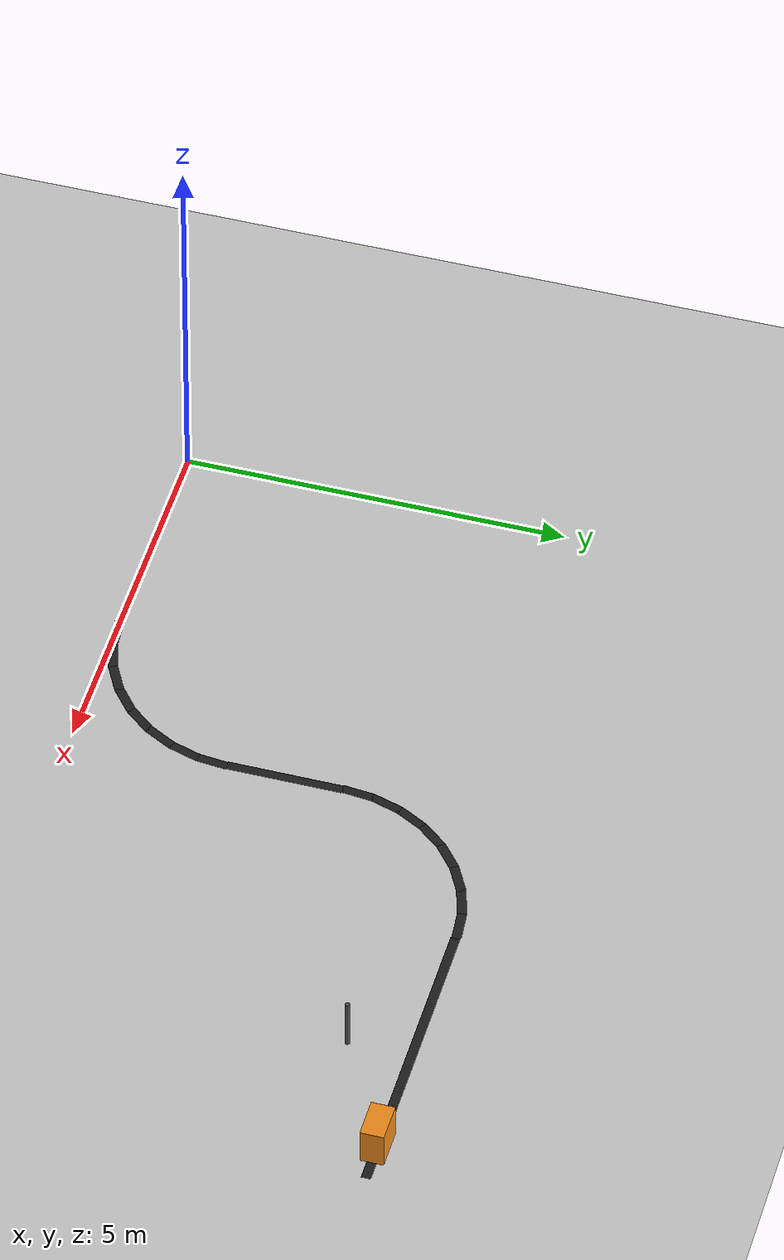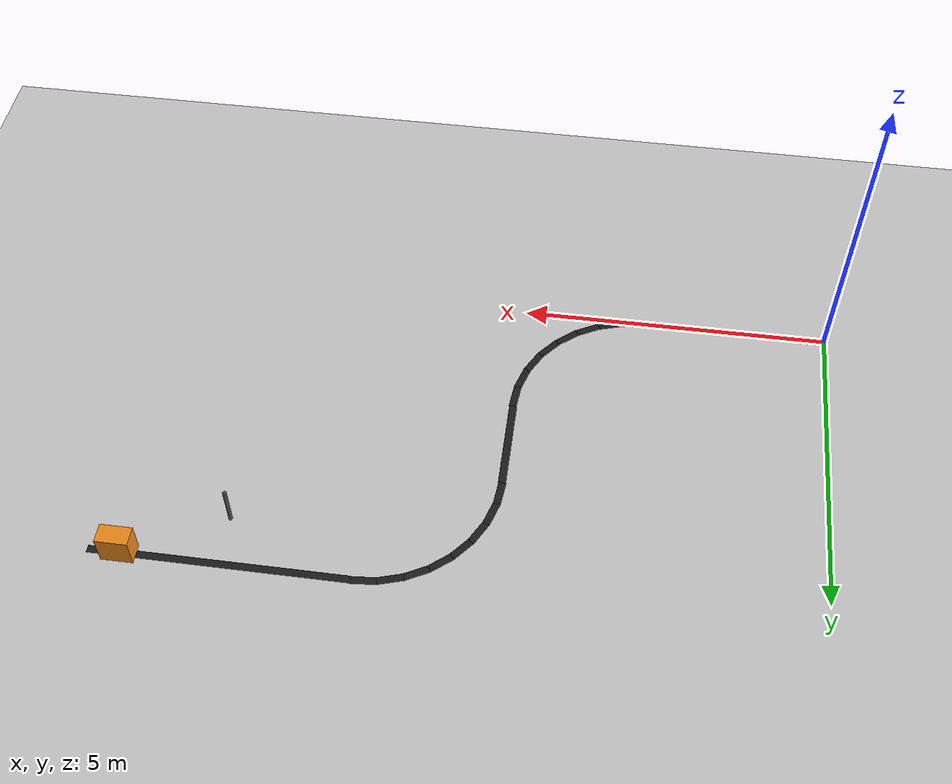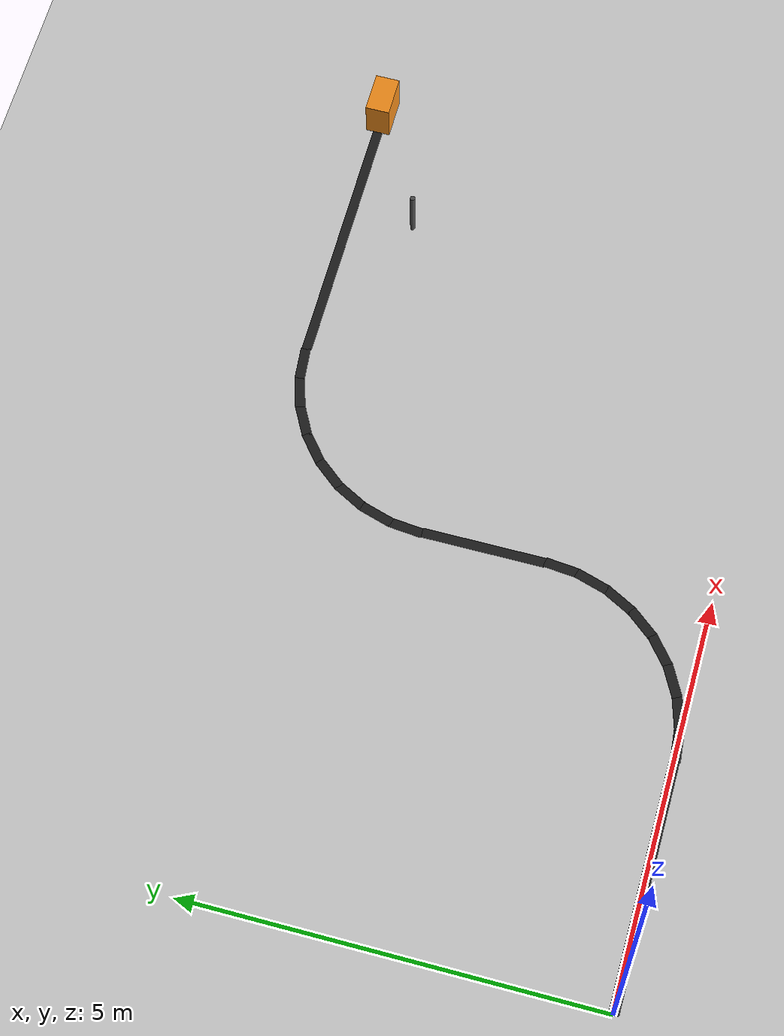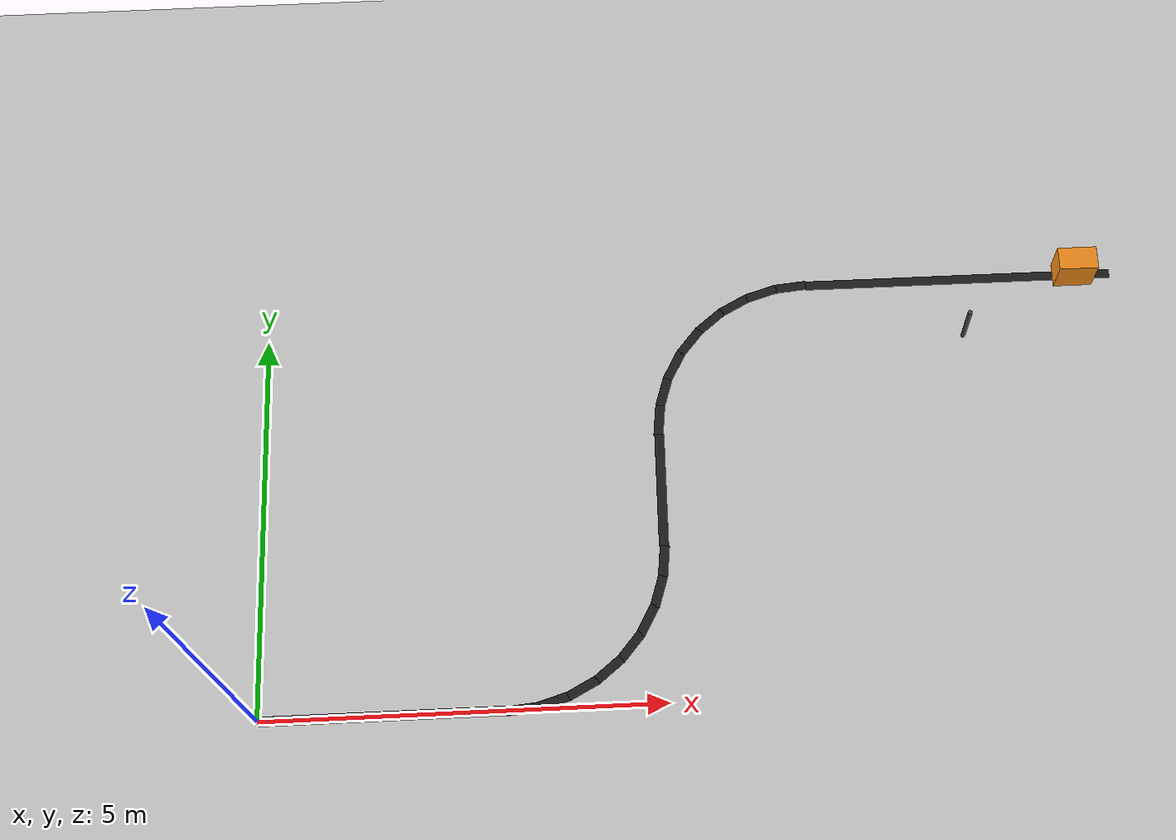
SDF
<sdf version="1.6">
 <world name="s_curve">
  <plugin name="gazebo_ros_state" filename="libgazebo_ros_state.so"/>
  <light type="directional" name="sun">
   <pose>0 0 10 0 0 0</pose>
   <diffuse>0.55 0.55 0.62 1</diffuse>
   <specular>0.08 0.08 0.08 1</specular>
   <attenuation>
    <range>1000</range>
    <constant>0.9</constant>
    <linear>0.01</linear>
    <quadratic>0.001</quadratic>
   </attenuation>
   <direction>-0.1 -0.3 -0.95</direction>
  </light>
  <model name="ground_plane">
   <static>true</static>
   <link name="link">
    <collision name="collision">
     <geometry><plane><normal>0 0 1</normal><size>100 100</size></plane></geometry>
     <surface><friction><ode><mu>100</mu><mu2>50</mu2></ode></friction></surface>
    </collision>
    <visual name="visual">
     <cast_shadows>false</cast_shadows>
     <geometry><plane><normal>0 0 1</normal><size>100 100</size></plane></geometry>
     <material>
      <script><uri>file://media/materials/scripts/gazebo.material</uri><name>Gazebo/Grey</name></script>
     </material>
    </visual>
   </link>
  </model>
  <model name="lane_0">
   <static>true</static>
   <link name="link">
    <visual name="visual">
     <geometry><box><size>3.0000 0.1200 0.001</size></box></geometry>
     <material>
      <script><uri>file://media/materials/scripts/gazebo.material</uri><name>Gazebo/Black</name></script>
     </material>
    </visual>
   </link>
   <pose>1.5000 0.0000 0.0005 0 0 0.0000</pose>
  </model>
  <model name="lane_1">
   <static>true</static>
   <link name="link">
    <visual name="visual">
     <geometry><box><size>0.4123 0.1200 0.001</size></box></geometry>
     <material>
      <script><uri>file://media/materials/scripts/gazebo.material</uri><name>Gazebo/Black</name></script>
     </material>
    </visual>
   </link>
   <pose>3.1960 0.0096 0.0005 0 0 0.0982</pose>
  </model>
  <model name="lane_2">
   <static>true</static>
   <link name="link">
    <visual name="visual">
     <geometry><box><size>0.4123 0.1200 0.001</size></box></geometry>
     <material>
      <script><uri>file://media/materials/scripts/gazebo.material</uri><name>Gazebo/Black</name></script>
     </material>
    </visual>
   </link>
   <pose>3.5806 0.0861 0.0005 0 0 0.2945</pose>
  </model>
  <model name="lane_3">
   <static>true</static>
   <link name="link">
    <visual name="visual">
     <geometry><box><size>0.4123 0.1200 0.001</size></box></geometry>
     <material>
      <script><uri>file://media/materials/scripts/gazebo.material</uri><name>Gazebo/Black</name></script>
     </material>
    </visual>
   </link>
   <pose>3.9428 0.2362 0.0005 0 0 0.4909</pose>
  </model>
  <model name="lane_4">
   <static>true</static>
   <link name="link">
    <visual name="visual">
     <geometry><box><size>0.4123 0.1200 0.001</size></box></geometry>
     <material>
      <script><uri>file://media/materials/scripts/gazebo.material</uri><name>Gazebo/Black</name></script>
     </material>
    </visual>
   </link>
   <pose>4.2688 0.4540 0.0005 0 0 0.6872</pose>
  </model>
  <model name="lane_5">
   <static>true</static>
   <link name="link">
    <visual name="visual">
     <geometry><box><size>0.4123 0.1200 0.001</size></box></geometry>
     <material>
      <script><uri>file://media/materials/scripts/gazebo.material</uri><name>Gazebo/Black</name></script>
     </material>
    </visual>
   </link>
   <pose>4.5460 0.7312 0.0005 0 0 0.8836</pose>
  </model>
  <model name="lane_6">
   <static>true</static>
   <link name="link">
    <visual name="visual">
     <geometry><box><size>0.4123 0.1200 0.001</size></box></geometry>
     <material>
      <script><uri>file://media/materials/scripts/gazebo.material</uri><name>Gazebo/Black</name></script>
     </material>
    </visual>
   </link>
   <pose>4.7638 1.0572 0.0005 0 0 1.0799</pose>
  </model>
  <model name="lane_7">
   <static>true</static>
   <link name="link">
    <visual name="visual">
     <geometry><box><size>0.4123 0.1200 0.001</size></box></geometry>
     <material>
      <script><uri>file://media/materials/scripts/gazebo.material</uri><name>Gazebo/Black</name></script>
     </material>
    </visual>
   </link>
   <pose>4.9139 1.4194 0.0005 0 0 1.2763</pose>
  </model>
  <model name="lane_8">
   <static>true</static>
   <link name="link">
    <visual name="visual">
     <geometry><box><size>0.4123 0.1200 0.001</size></box></geometry>
     <material>
      <script><uri>file://media/materials/scripts/gazebo.material</uri><name>Gazebo/Black</name></script>
     </material>
    </visual>
   </link>
   <pose>4.9904 1.8040 0.0005 0 0 1.4726</pose>
  </model>
  <model name="lane_9">
   <static>true</static>
   <link name="link">
    <visual name="visual">
     <geometry><box><size>1.5000 0.1200 0.001</size></box></geometry>
     <material>
      <script><uri>file://media/materials/scripts/gazebo.material</uri><name>Gazebo/Black</name></script>
     </material>
    </visual>
   </link>
   <pose>5.0000 2.7500 0.0005 0 0 1.5708</pose>
  </model>
  <model name="lane_10">
   <static>true</static>
   <link name="link">
    <visual name="visual">
     <geometry><box><size>0.4123 0.1200 0.001</size></box></geometry>
     <material>
      <script><uri>file://media/materials/scripts/gazebo.material</uri><name>Gazebo/Black</name></script>
     </material>
    </visual>
   </link>
   <pose>5.0096 3.6960 0.0005 0 0 4.6142</pose>
  </model>
  <model name="lane_11">
   <static>true</static>
   <link name="link">
    <visual name="visual">
     <geometry><box><size>0.4123 0.1200 0.001</size></box></geometry>
     <material>
      <script><uri>file://media/materials/scripts/gazebo.material</uri><name>Gazebo/Black</name></script>
     </material>
    </visual>
   </link>
   <pose>5.0861 4.0806 0.0005 0 0 4.4179</pose>
  </model>
  <model name="lane_12">
   <static>true</static>
   <link name="link">
    <visual name="visual">
     <geometry><box><size>0.4123 0.1200 0.001</size></box></geometry>
     <material>
      <script><uri>file://media/materials/scripts/gazebo.material</uri><name>Gazebo/Black</name></script>
     </material>
    </visual>
   </link>
   <pose>5.2362 4.4428 0.0005 0 0 4.2215</pose>
  </model>
  <model name="lane_13">
   <static>true</static>
   <link name="link">
    <visual name="visual">
     <geometry><box><size>0.4123 0.1200 0.001</size></box></geometry>
     <material>
      <script><uri>file://media/materials/scripts/gazebo.material</uri><name>Gazebo/Black</name></script>
     </material>
    </visual>
   </link>
   <pose>5.4540 4.7688 0.0005 0 0 4.0252</pose>
  </model>
  <model name="lane_14">
   <static>true</static>
   <link name="link">
    <visual name="visual">
     <geometry><box><size>0.4123 0.1200 0.001</size></box></geometry>
     <material>
      <script><uri>file://media/materials/scripts/gazebo.material</uri><name>Gazebo/Black</name></script>
     </material>
    </visual>
   </link>
   <pose>5.7312 5.0460 0.0005 0 0 3.8288</pose>
  </model>
  <model name="lane_15">
   <static>true</static>
   <link name="link">
    <visual name="visual">
     <geometry><box><size>0.4123 0.1200 0.001</size></box></geometry>
     <material>
      <script><uri>file://media/materials/scripts/gazebo.material</uri><name>Gazebo/Black</name></script>
     </material>
    </visual>
   </link>
   <pose>6.0572 5.2638 0.0005 0 0 3.6325</pose>
  </model>
  <model name="lane_16">
   <static>true</static>
   <link name="link">
    <visual name="visual">
     <geometry><box><size>0.4123 0.1200 0.001</size></box></geometry>
     <material>
      <script><uri>file://media/materials/scripts/gazebo.material</uri><name>Gazebo/Black</name></script>
     </material>
    </visual>
   </link>
   <pose>6.4194 5.4139 0.0005 0 0 3.4361</pose>
  </model>
  <model name="lane_17">
   <static>true</static>
   <link name="link">
    <visual name="visual">
     <geometry><box><size>0.4123 0.1200 0.001</size></box></geometry>
     <material>
      <script><uri>file://media/materials/scripts/gazebo.material</uri><name>Gazebo/Black</name></script>
     </material>
    </visual>
   </link>
   <pose>6.8040 5.4904 0.0005 0 0 3.2398</pose>
  </model>
  <model name="lane_18">
   <static>true</static>
   <link name="link">
    <visual name="visual">
     <geometry><box><size>4.0000 0.1200 0.001</size></box></geometry>
     <material>
      <script><uri>file://media/materials/scripts/gazebo.material</uri><name>Gazebo/Black</name></script>
     </material>
    </visual>
   </link>
   <pose>9.0000 5.5000 0.0005 0 0 0.0000</pose>
  </model>
  <model name="traffic_light_pole">
   <static>true</static>
   <link name="link">
    <collision name="collision">
     <geometry><cylinder><radius>0.03</radius><length>0.700</length></cylinder></geometry>
    </collision>
    <visual name="visual">
     <geometry><cylinder><radius>0.03</radius><length>0.700</length></cylinder></geometry>
     <material>
      <script><uri>file://media/materials/scripts/gazebo.material</uri><name>Gazebo/DarkGrey</name></script>
     </material>
    </visual>
   </link>
   <pose>9.0000 4.7000 0.3500 0 0 0</pose>
  </model>
  <model name="obstacle_box">
   <static>true</static>
   <link name="link">
    <collision name="collision"><geometry><box><size>0.500 0.300 0.500</size></box></geometry></collision>
    <visual name="visual">
     <geometry><box><size>0.500 0.300 0.500</size></box></geometry>
     <material>
      <script><uri>file://media/materials/scripts/gazebo.material</uri><name>Gazebo/Orange</name></script>
     </material>
    </visual>
   </link>
   <pose>10.5000 5.5000 0.2500 0 0 0</pose>
  </model>
 </world>
</sdf>
